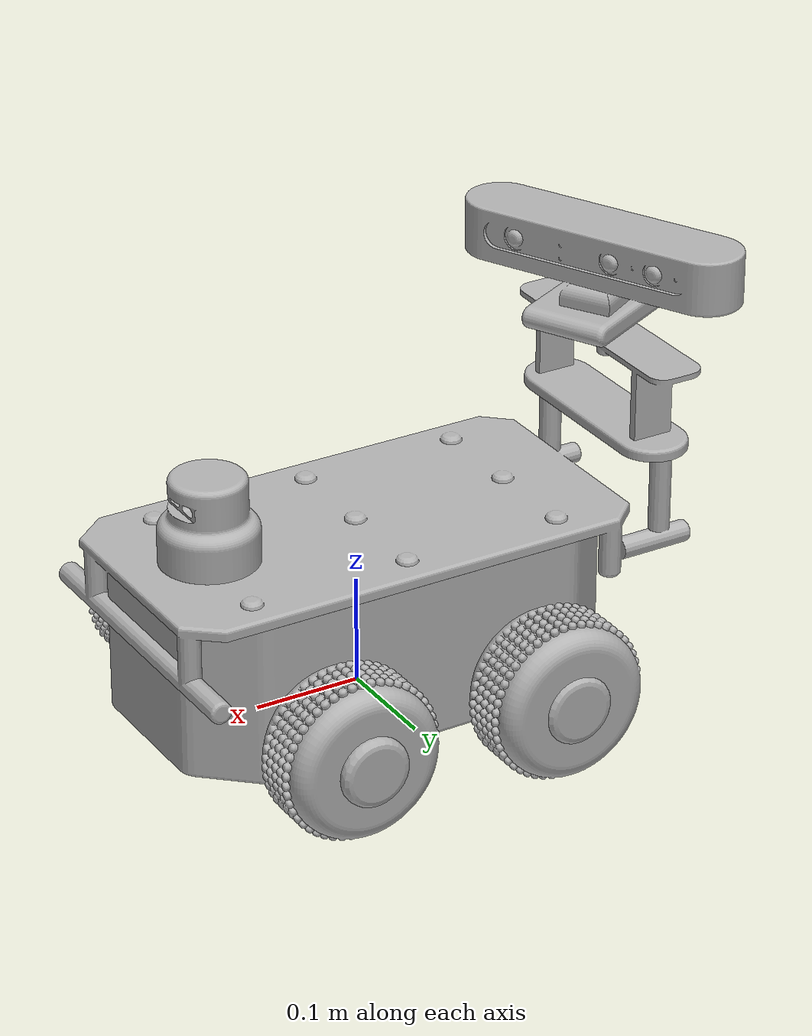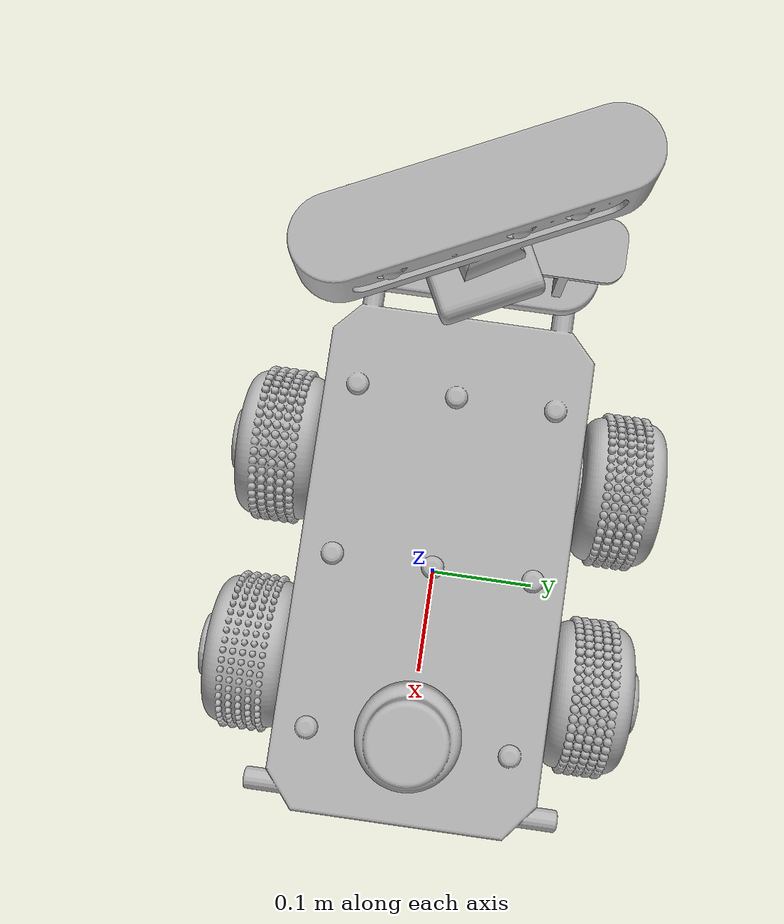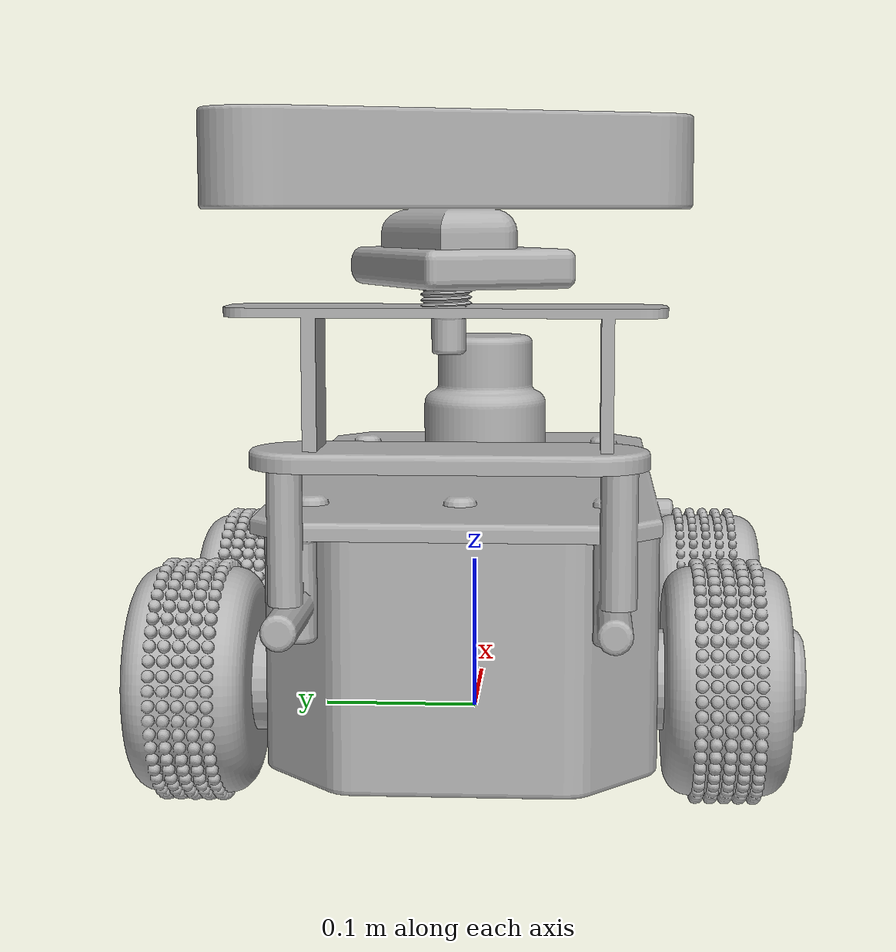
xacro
<?xml version="1.0" ?>
<robot name="Magnum" xmlns:xacro="http://www.ros.org/wiki/xacro">

<xacro:include filename="$(find Magnum_description)/urdf/materials.xacro" />
<xacro:include filename="$(find Magnum_description)/urdf/Magnum.trans" />
<xacro:include filename="$(find Magnum_description)/urdf/Magnum.gazebo" />
<link name="base_link">
  <inertial>
    <origin rpy="0 0 0" xyz="-9.329173667354923e-05 3.848712171642927e-05 0.04894523690180442"/>
    <mass value="62.71254313371608"/>
    <inertia ixx="0.626732" ixy="0.000217" ixz="-3.7e-05" iyy="1.018832" iyz="0.002589" izz="1.460963"/>
  </inertial>
  <visual>
    <origin rpy="0 0 0" xyz="0 0 0"/>
    <geometry>
      <mesh filename="package://Magnum_description/meshes/base_link.stl" scale="0.001 0.001 0.001"/>
    </geometry>
    <material name="silver"/>
  </visual>
  <collision>
    <origin rpy="0 0 0" xyz="0 0 0"/>
    <geometry>
      <mesh filename="package://Magnum_description/meshes/base_link.stl" scale="0.001 0.001 0.001"/>
    </geometry>
  </collision>
</link>

<link name="plate_1">
  <inertial>
    <origin rpy="0 0 0" xyz="-0.004332802287149878 -7.042151966963348e-05 0.09820315644391829"/>
    <mass value="9.986728354106381"/>
    <inertia ixx="0.05312" ixy="-0.000348" ixz="0.004681" iyy="0.229856" iyz="6.7e-05" izz="0.276499"/>
  </inertial>
  <visual>
    <origin rpy="0 0 0" xyz="0.0 -0.0 -0.05"/>
    <geometry>
      <mesh filename="package://Magnum_description/meshes/plate_1.stl" scale="0.001 0.001 0.001"/>
    </geometry>
    <material name="silver"/>
  </visual>
  <collision>
    <origin rpy="0 0 0" xyz="0.0 -0.0 -0.05"/>
    <geometry>
      <mesh filename="package://Magnum_description/meshes/plate_1.stl" scale="0.001 0.001 0.001"/>
    </geometry>
  </collision>
</link>

<link name="secondplate_1">
  <inertial>
    <origin rpy="0 0 0" xyz="0.0008207662826036355 0.0906117261971509 0.1286614005636199"/>
    <mass value="1.9309211537817133"/>
    <inertia ixx="0.009879" ixy="-1e-06" ixz="1.9e-05" iyy="0.003324" iyz="-4.3e-05" izz="0.007453"/>
  </inertial>
  <visual>
    <origin rpy="0 0 0" xyz="0.257451 0.090609 -0.106881"/>
    <geometry>
      <mesh filename="package://Magnum_description/meshes/secondplate_1.stl" scale="0.001 0.001 0.001"/>
    </geometry>
    <material name="silver"/>
  </visual>
  <collision>
    <origin rpy="0 0 0" xyz="0.257451 0.090609 -0.106881"/>
    <geometry>
      <mesh filename="package://Magnum_description/meshes/secondplate_1.stl" scale="0.001 0.001 0.001"/>
    </geometry>
  </collision>
</link>

<link name="lidar_1">
  <inertial>
    <origin rpy="0 0 0" xyz="-0.07543316330680092 6.876561765957338e-06 0.12447474337598766"/>
    <mass value="3.0298602561653087"/>
    <inertia ixx="0.002812" ixy="-0.0" ixz="3.2e-05" iyy="0.002782" iyz="-0.0" izz="0.002506"/>
  </inertial>
  <visual>
    <origin rpy="0 0 0" xyz="-0.218508 -0.0 -0.07"/>
    <geometry>
      <mesh filename="package://Magnum_description/meshes/lidar_1.stl" scale="0.001 0.001 0.001"/>
    </geometry>
    <material name="silver"/>
  </visual>
  <collision>
    <origin rpy="0 0 0" xyz="-0.218508 -0.0 -0.07"/>
    <geometry>
      <mesh filename="package://Magnum_description/meshes/lidar_1.stl" scale="0.001 0.001 0.001"/>
    </geometry>
  </collision>
</link>

<link name="camera__1__1">
  <inertial>
    <origin rpy="0 0 0" xyz="0.2624325014160251 -0.004512003009916339 -0.013068118666630824"/>
    <mass value="8.31232970395701"/>
    <inertia ixx="0.036108" ixy="0.013224" ixz="0.000441" iyy="0.015424" iyz="-8.3e-05" izz="0.041255"/>
  </inertial>
  <visual>
    <origin rpy="0 0 0" xyz="0.513532 -0.000123 -0.358763"/>
    <geometry>
      <mesh filename="package://Magnum_description/meshes/camera__1__1.stl" scale="0.001 0.001 0.001"/>
    </geometry>
    <material name="silver"/>
  </visual>
  <collision>
    <origin rpy="0 0 0" xyz="0.513532 -0.000123 -0.358763"/>
    <geometry>
      <mesh filename="package://Magnum_description/meshes/camera__1__1.stl" scale="0.001 0.001 0.001"/>
    </geometry>
  </collision>
</link>

<link name="lefttyre_front_1">
  <inertial>
    <origin rpy="0 0 0" xyz="-1.6663259182925216e-05 0.04850703137274057 5.891880391989401e-06"/>
    <mass value="7.130674909895951"/>
    <inertia ixx="0.013434" ixy="-0.0" ixz="1e-06" iyy="0.020801" iyz="0.0" izz="0.013437"/>
  </inertial>
  <visual>
    <origin rpy="0 0 0" xyz="-0.099931 0.206749 -0.044379"/>
    <geometry>
      <mesh filename="package://Magnum_description/meshes/lefttyre_front_1.stl" scale="0.001 0.001 0.001"/>
    </geometry>
    <material name="silver"/>
  </visual>
  <collision>
    <origin rpy="0 0 0" xyz="-0.099931 0.206749 -0.044379"/>
    <geometry>
      <mesh filename="package://Magnum_description/meshes/lefttyre_front_1.stl" scale="0.001 0.001 0.001"/>
    </geometry>
  </collision>
</link>

<link name="righttyre_front_1">
  <inertial>
    <origin rpy="0 0 0" xyz="2.476125003786356e-07 -0.04750570664250586 9.386443557829471e-08"/>
    <mass value="7.360960001513173"/>
    <inertia ixx="0.014076" ixy="0.0" ixz="-0.0" iyy="0.022024" iyz="0.0" izz="0.014076"/>
  </inertial>
  <visual>
    <origin rpy="0 0 0" xyz="-0.099092 -0.208749 -0.041393"/>
    <geometry>
      <mesh filename="package://Magnum_description/meshes/righttyre_front_1.stl" scale="0.001 0.001 0.001"/>
    </geometry>
    <material name="silver"/>
  </visual>
  <collision>
    <origin rpy="0 0 0" xyz="-0.099092 -0.208749 -0.041393"/>
    <geometry>
      <mesh filename="package://Magnum_description/meshes/righttyre_front_1.stl" scale="0.001 0.001 0.001"/>
    </geometry>
  </collision>
</link>

<link name="lefttyre_back_1">
  <inertial>
    <origin rpy="0 0 0" xyz="-8.45109131818178e-06 0.04750033474932158 1.4673200500636696e-05"/>
    <mass value="7.29838027874689"/>
    <inertia ixx="0.013899" ixy="-0.0" ixz="2e-06" iyy="0.021679" iyz="0.0" izz="0.013898"/>
  </inertial>
  <visual>
    <origin rpy="0 0 0" xyz="0.100988 0.206749 -0.044379"/>
    <geometry>
      <mesh filename="package://Magnum_description/meshes/lefttyre_back_1.stl" scale="0.001 0.001 0.001"/>
    </geometry>
    <material name="silver"/>
  </visual>
  <collision>
    <origin rpy="0 0 0" xyz="0.100988 0.206749 -0.044379"/>
    <geometry>
      <mesh filename="package://Magnum_description/meshes/lefttyre_back_1.stl" scale="0.001 0.001 0.001"/>
    </geometry>
  </collision>
</link>

<link name="righttyre_back_1">
  <inertial>
    <origin rpy="0 0 0" xyz="-2.9379001194318466e-07 -0.04250264195893158 9.386443845099679e-08"/>
    <mass value="7.294313180076794"/>
    <inertia ixx="0.013895" ixy="-0.0" ixz="0.0" iyy="0.021675" iyz="-0.0" izz="0.013895"/>
  </inertial>
  <visual>
    <origin rpy="0 0 0" xyz="0.100725 -0.208749 -0.041393"/>
    <geometry>
      <mesh filename="package://Magnum_description/meshes/righttyre_back_1.stl" scale="0.001 0.001 0.001"/>
    </geometry>
    <material name="silver"/>
  </visual>
  <collision>
    <origin rpy="0 0 0" xyz="0.100725 -0.208749 -0.041393"/>
    <geometry>
      <mesh filename="package://Magnum_description/meshes/righttyre_back_1.stl" scale="0.001 0.001 0.001"/>
    </geometry>
  </collision>
</link>

<joint name="Rigid5" type="fixed">
  <origin rpy="0 0 0" xyz="0.0 0.0 0.05"/>
  <parent link="base_link"/>
  <child link="plate_1"/>
</joint>

<joint name="Rigid6" type="fixed">
  <origin rpy="0 0 0" xyz="-0.257451 -0.090609 0.056881"/>
  <parent link="plate_1"/>
  <child link="secondplate_1"/>
</joint>

<joint name="Rigid7" type="fixed">
  <origin rpy="0 0 0" xyz="0.218508 0.0 0.02"/>
  <parent link="plate_1"/>
  <child link="lidar_1"/>
</joint>

<joint name="Rigid8" type="fixed">
  <origin rpy="0 0 0" xyz="-0.256081 0.090732 0.251882"/>
  <parent link="secondplate_1"/>
  <child link="camera__1__1"/>
</joint>

<joint name="Rev9" type="continuous">
  <origin rpy="0 0 0" xyz="0.099931 -0.206749 0.044379"/>
  <parent link="base_link"/>
  <child link="lefttyre_front_1"/>
  <axis xyz="-0.0 1.0 0.0"/>
</joint>

<joint name="Rev10" type="continuous">
  <origin rpy="0 0 0" xyz="0.099092 0.208749 0.041393"/>
  <parent link="base_link"/>
  <child link="righttyre_front_1"/>
  <axis xyz="0.0 1.0 0.0"/>
</joint>

<joint name="Rev11" type="continuous">
  <origin rpy="0 0 0" xyz="-0.100988 -0.206749 0.044379"/>
  <parent link="base_link"/>
  <child link="lefttyre_back_1"/>
  <axis xyz="-0.0 1.0 0.0"/>
</joint>

<joint name="Rev12" type="continuous">
  <origin rpy="0 0 0" xyz="-0.100725 0.208749 0.041393"/>
  <parent link="base_link"/>
  <child link="righttyre_back_1"/>
  <axis xyz="0.0 1.0 0.0"/>
</joint>

</robot>

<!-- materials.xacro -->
<robot name="Magnum" xmlns:xacro="http://www.ros.org/wiki/xacro" >

<material name="silver">
  <color rgba="0.700 0.700 0.700 1.000"/>
</material>

</robot>

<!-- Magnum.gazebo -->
<robot name="Magnum" xmlns:xacro="http://www.ros.org/wiki/xacro" >

<xacro:property name="body_color" value="Gazebo/Blue"/>
<xacro:property name="wheel_color" value="Gazebo/Black"/>
<xacro:property name="lidar_color" value="Gazebo/Red"/>
<xacro:property name="Camera_color" value="Gazebo/Grey"/>

<gazebo>
  <plugin filename="libgazebo_ros_control.so" name="control"/>
</gazebo>
<gazebo reference="base_link">
  <material>${body_color}</material>
  <mu1>1500</mu1>
  <mu2>1500</mu2>
  <selfCollide>true</selfCollide>
  <gravity>true</gravity>
</gazebo>

<gazebo reference="plate_1">
  <material>${wheel_color}</material>
  <mu1>0.2</mu1>
  <mu2>0.2</mu2>
  <selfCollide>true</selfCollide>
</gazebo>

<gazebo reference="secondplate_1">
  <material>${body_color}</material>
  <mu1>0.2</mu1>
  <mu2>0.2</mu2>
  <selfCollide>true</selfCollide>
</gazebo>

<gazebo reference="lidar_1">
  <material>${lidar_color}</material>
  <mu1>0.2</mu1>
  <mu2>0.2</mu2>
  <selfCollide>true</selfCollide>
</gazebo>

<gazebo reference="camera__1__1">
  <material>${wheel_color}</material>
  <mu1>0.2</mu1>
  <mu2>0.2</mu2>
  <selfCollide>true</selfCollide>
</gazebo>

<gazebo reference="lefttyre_front_1">
  <material>${wheel_color}</material>
  <mu1>1500</mu1>
  <mu2>1500</mu2>
  <selfCollide>true</selfCollide>
</gazebo>

<gazebo reference="righttyre_front_1">
  <material>${wheel_color}</material>
  <mu1>1500</mu1>
  <mu2>1500</mu2>
  <selfCollide>true</selfCollide>
</gazebo>

<gazebo reference="lefttyre_back_1">
  <material>${wheel_color}</material>
  <mu1>1500</mu1>
  <mu2>1500</mu2>
  <selfCollide>true</selfCollide>
</gazebo>

<gazebo reference="righttyre_back_1">
  <material>${wheel_color}</material>
  <mu1>1500</mu1>
  <mu2>1500</mu2>
  <selfCollide>true</selfCollide>
</gazebo>

<gazebo>
  <plugin name="skid_steer_drive_controller" filename="libgazebo_ros_skid_steer_drive.so">
    <updateRate>100.0</updateRate>
    <robotNamespace>/</robotNamespace>
    <leftFrontJoint>Rev11</leftFrontJoint>
    <rightFrontJoint>Rev12</rightFrontJoint>
    <leftRearJoint>Rev9</leftRearJoint>
    <rightRearJoint>Rev10</rightRearJoint>
    <wheelSeparation>0.4</wheelSeparation>
    <wheelDiameter>0.2</wheelDiameter>
    <robotBaseFrame>base_link</robotBaseFrame>
    <torque>20</torque>
    <topicName>cmd_vel</topicName>
    <broadcastTF>true</broadcastTF>
  </plugin>
</gazebo>

<!-- hokuyo -->
  <gazebo reference="lidar_1">
    <sensor type="ray" name="head_hokuyo_sensor">
      <pose>0 0 0 0 0 0</pose>
      <visualize>true</visualize>
      <update_rate>40</update_rate>
      <ray>
        <scan>
          <horizontal>
            <samples>720</samples>
            <resolution>1</resolution>
            <min_angle>-1.570796</min_angle>
            <max_angle>1.570796</max_angle>
          </horizontal>
        </scan>
        <range>
          <min>0.10</min>
          <max>30.0</max>
          <resolution>0.01</resolution>
        </range>
        <noise>
          <type>gaussian</type>
          <mean>0.0</mean>
          <stddev>0.01</stddev>
        </noise>
      </ray>
      <plugin name="gazebo_ros_head_hokuyo_controller" filename="libgazebo_ros_laser.so">
        <topicName>/scan</topicName>
        <frameName>lidar_1</frameName>
      </plugin>
    </sensor>
  </gazebo>

 <!-- camera -->
  <gazebo reference="camera__1__1">
    <sensor type="camera" name="camera1">
      <update_rate>30.0</update_rate>
      <camera name="head">
        <horizontal_fov>1.3962634</horizontal_fov>
        <image>
          <width>800</width>
          <height>800</height>
          <format>R8G8B8</format>
        </image>
        <clip>
          <near>0.02</near>
          <far>300</far>
        </clip>
        <noise>
          <type>gaussian</type>
          <!-- Noise is sampled independently per pixel on each frame.
               That pixel's noise value is added to each of its color
               channels, which at that point lie in the range [0,1]. -->
          <mean>0.0</mean>
          <stddev>0.007</stddev>
        </noise>
      </camera>
      <plugin name="camera_controller" filename="libgazebo_ros_camera.so">
        <alwaysOn>true</alwaysOn>
        <updateRate>0.0</updateRate>
        <cameraName>Magnum/camera1</cameraName>
        <imageTopicName>image_raw</imageTopicName>
        <cameraInfoTopicName>camera_info</cameraInfoTopicName>
        <frameName>camera_link</frameName>
        <hackBaseline>0.07</hackBaseline>
        <distortionK1>0.0</distortionK1>
        <distortionK2>0.0</distortionK2>
        <distortionK3>0.0</distortionK3>
        <distortionT1>0.0</distortionT1>
        <distortionT2>0.0</distortionT2>
      </plugin>
    </sensor>
  </gazebo>

</robot>
